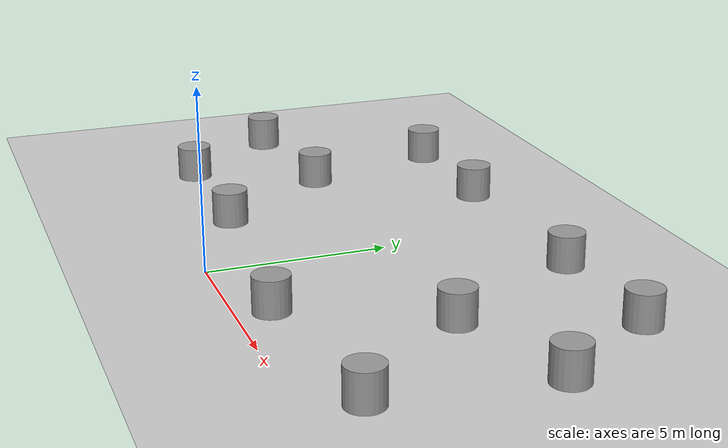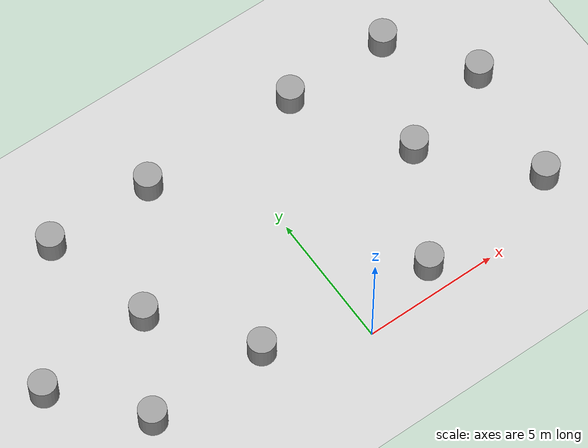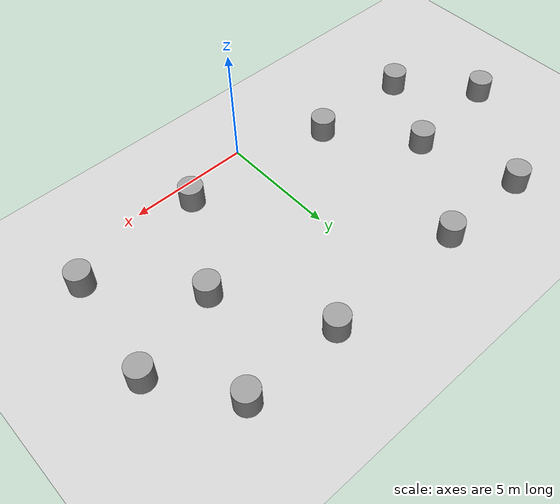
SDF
<sdf version="1.7">
 <world name="default">
  <light name="sun" type="directional">
   <pose>0 0 10 0 -0 0</pose>
   <diffuse>0.8 0.8 0.8 1</diffuse>
   <specular>0.2 0.2 0.2 1</specular>
   <attenuation>
    <range>1000</range>
    <constant>0.9</constant>
    <linear>0.01</linear>
    <quadratic>0.001</quadratic>
   </attenuation>
   <direction>-0.5 0.1 -0.9</direction>
   <spot><inner_angle>0</inner_angle><outer_angle>0</outer_angle><falloff>0</falloff></spot>
  </light>
  <model name="ground_plane">
   <static>1</static>
   <link name="link">
    <collision name="collision">
     <geometry><plane><normal>0 0 1</normal><size>100 100</size></plane></geometry>
     <surface><friction><ode><mu>100</mu><mu2>50</mu2></ode></friction></surface>
    </collision>
    <visual name="visual">
     <cast_shadows>0</cast_shadows>
     <geometry><plane><normal>0 0 1</normal><size>100 100</size></plane></geometry>
     <material>
      <script><uri>file://media/materials/scripts/gazebo.material</uri><name>Gazebo/Grey</name></script>
     </material>
    </visual>
   </link>
  </model>
  <gravity>0 0 -9.8</gravity>
  <magnetic_field>6e-06 2.3e-05 -4.2e-05</magnetic_field>
  <atmosphere type="adiabatic"/>
  <physics type="ode">
   <max_step_size>0.01</max_step_size>
   <real_time_factor>1</real_time_factor>
   <real_time_update_rate>100</real_time_update_rate>
  </physics>
  <scene><ambient>0.4 0.4 0.4 1</ambient><background>0.7 0.7 0.7 1</background><shadows>1</shadows></scene>
  <spherical_coordinates>
   <surface_model>EARTH_WGS84</surface_model>
   <latitude_deg>0</latitude_deg>
   <longitude_deg>0</longitude_deg>
   <elevation>0</elevation>
   <heading_deg>0</heading_deg>
  </spherical_coordinates>
  <model name="unit_cylinder">
   <pose>3.05222 0.920404 0.49912 0 0 -0.135827</pose>
   <link name="link">
    <inertial>
     <mass>1</mass>
     <inertia><ixx>0.145833</ixx><ixy>0</ixy><ixz>0</ixz><iyy>0.145833</iyy><iyz>0</iyz><izz>0.125</izz></inertia>
    </inertial>
    <collision name="collision">
     <geometry><cylinder><radius>0.5</radius><length>1</length></cylinder></geometry>
    </collision>
    <visual name="visual">
     <geometry><cylinder><radius>0.5</radius><length>1</length></cylinder></geometry>
     <material>
      <script><name>Gazebo/Grey</name><uri>file://media/materials/scripts/gazebo.material</uri></script>
     </material>
    </visual>
   </link>
  </model>
  <model name="unit_cylinder_0">
   <pose>5.33965 4.8715 0.499096 4.9e-05 4.8e-05 0.010187</pose>
   <link name="link">
    <inertial>
     <mass>1</mass>
     <inertia><ixx>0.145833</ixx><ixy>0</ixy><ixz>0</ixz><iyy>0.145833</iyy><iyz>0</iyz><izz>0.125</izz></inertia>
    </inertial>
    <collision name="collision">
     <geometry><cylinder><radius>0.5</radius><length>1</length></cylinder></geometry>
    </collision>
    <visual name="visual">
     <geometry><cylinder><radius>0.5</radius><length>1</length></cylinder></geometry>
     <material>
      <script><name>Gazebo/Grey</name><uri>file://media/materials/scripts/gazebo.material</uri></script>
     </material>
    </visual>
   </link>
  </model>
  <model name="unit_cylinder_2">
   <pose>8.99962 6.0004 0.499824 -0.000249 -0.000249 -6e-05</pose>
   <link name="link">
    <inertial>
     <mass>1</mass>
     <inertia><ixx>0.145833</ixx><ixy>0</ixy><ixz>0</ixz><iyy>0.145833</iyy><iyz>0</iyz><izz>0.125</izz></inertia>
    </inertial>
    <collision name="collision">
     <geometry><cylinder><radius>0.5</radius><length>1</length></cylinder></geometry>
    </collision>
    <visual name="visual">
     <geometry><cylinder><radius>0.5</radius><length>1</length></cylinder></geometry>
     <material>
      <script><name>Gazebo/Grey</name><uri>file://media/materials/scripts/gazebo.material</uri></script>
     </material>
    </visual>
   </link>
  </model>
  <model name="unit_cylinder_1">
   <pose>2.99949 9.00052 0.499824 -0.000257 -0.000242 0.030033</pose>
   <link name="link">
    <inertial>
     <mass>1</mass>
     <inertia><ixx>0.145833</ixx><ixy>0</ixy><ixz>0</ixz><iyy>0.145833</iyy><iyz>0</iyz><izz>0.125</izz></inertia>
    </inertial>
    <collision name="collision">
     <geometry><cylinder><radius>0.5</radius><length>1</length></cylinder></geometry>
    </collision>
    <visual name="visual">
     <geometry><cylinder><radius>0.5</radius><length>1</length></cylinder></geometry>
     <material>
      <script><name>Gazebo/Grey</name><uri>file://media/materials/scripts/gazebo.material</uri></script>
     </material>
    </visual>
   </link>
  </model>
  <model name="unit_cylinder_3">
   <pose>6.99969 9.00032 0.499824 -0.000249 -0.000249 -5e-05</pose>
   <link name="link">
    <inertial>
     <mass>1</mass>
     <inertia><ixx>0.145833</ixx><ixy>0</ixy><ixz>0</ixz><iyy>0.145833</iyy><iyz>0</iyz><izz>0.125</izz></inertia>
    </inertial>
    <collision name="collision">
     <geometry><cylinder><radius>0.5</radius><length>1</length></cylinder></geometry>
    </collision>
    <visual name="visual">
     <geometry><cylinder><radius>0.5</radius><length>1</length></cylinder></geometry>
     <material>
      <script><name>Gazebo/Grey</name><uri>file://media/materials/scripts/gazebo.material</uri></script>
     </material>
    </visual>
   </link>
  </model>
  <model name="unit_cylinder_4">
   <pose>8.4079 1.41372 0.499824 -0.000249 -0.000249 -4.8e-05</pose>
   <link name="link">
    <inertial>
     <mass>1</mass>
     <inertia><ixx>0.145833</ixx><ixy>0</ixy><ixz>0</ixz><iyy>0.145833</iyy><iyz>0</iyz><izz>0.125</izz></inertia>
    </inertial>
    <collision name="collision">
     <geometry><cylinder><radius>0.5</radius><length>1</length></cylinder></geometry>
    </collision>
    <visual name="visual">
     <geometry><cylinder><radius>0.5</radius><length>1</length></cylinder></geometry>
     <material>
      <script><name>Gazebo/Grey</name><uri>file://media/materials/scripts/gazebo.material</uri></script>
     </material>
    </visual>
   </link>
  </model>
  <model name="unit_cylinder_5">
   <pose>-7.81334 1.59878 0.499824 -0.000249 -0.000249 -4e-05</pose>
   <link name="link">
    <inertial>
     <mass>1</mass>
     <inertia><ixx>0.145833</ixx><ixy>0</ixy><ixz>0</ixz><iyy>0.145833</iyy><iyz>0</iyz><izz>0.125</izz></inertia>
    </inertial>
    <collision name="collision">
     <geometry><cylinder><radius>0.5</radius><length>1</length></cylinder></geometry>
    </collision>
    <visual name="visual">
     <geometry><cylinder><radius>0.5</radius><length>1</length></cylinder></geometry>
     <material>
      <script><name>Gazebo/Grey</name><uri>file://media/materials/scripts/gazebo.material</uri></script>
     </material>
    </visual>
   </link>
  </model>
  <model name="unit_cylinder_6">
   <pose>-7.00022 9.00023 0.499824 -0.000249 -0.000249 -3.9e-05</pose>
   <link name="link">
    <inertial>
     <mass>1</mass>
     <inertia><ixx>0.145833</ixx><ixy>0</ixy><ixz>0</ixz><iyy>0.145833</iyy><iyz>0</iyz><izz>0.125</izz></inertia>
    </inertial>
    <collision name="collision">
     <geometry><cylinder><radius>0.5</radius><length>1</length></cylinder></geometry>
    </collision>
    <visual name="visual">
     <geometry><cylinder><radius>0.5</radius><length>1</length></cylinder></geometry>
     <material>
      <script><name>Gazebo/Grey</name><uri>file://media/materials/scripts/gazebo.material</uri></script>
     </material>
    </visual>
   </link>
  </model>
  <model name="unit_cylinder_7">
   <pose>-10.2222 4.52165 0.49912 0 0 -3.8e-05</pose>
   <link name="link">
    <inertial>
     <mass>1</mass>
     <inertia><ixx>0.145833</ixx><ixy>0</ixy><ixz>0</ixz><iyy>0.145833</iyy><iyz>0</iyz><izz>0.125</izz></inertia>
    </inertial>
    <collision name="collision">
     <geometry><cylinder><radius>0.5</radius><length>1</length></cylinder></geometry>
    </collision>
    <visual name="visual">
     <geometry><cylinder><radius>0.5</radius><length>1</length></cylinder></geometry>
     <material>
      <script><name>Gazebo/Grey</name><uri>file://media/materials/scripts/gazebo.material</uri></script>
     </material>
    </visual>
   </link>
  </model>
  <model name="unit_cylinder_8">
   <pose>-3.00011 9.00011 0.49912 0 0 -3.7e-05</pose>
   <link name="link">
    <inertial>
     <mass>1</mass>
     <inertia><ixx>0.145833</ixx><ixy>0</ixy><ixz>0</ixz><iyy>0.145833</iyy><iyz>0</iyz><izz>0.125</izz></inertia>
    </inertial>
    <collision name="collision">
     <geometry><cylinder><radius>0.5</radius><length>1</length></cylinder></geometry>
    </collision>
    <visual name="visual">
     <geometry><cylinder><radius>0.5</radius><length>1</length></cylinder></geometry>
     <material>
      <script><name>Gazebo/Grey</name><uri>file://media/materials/scripts/gazebo.material</uri></script>
     </material>
    </visual>
   </link>
  </model>
  <model name="unit_cylinder_9">
   <pose>-5.91597 4.9454 0.499096 4.8e-05 4.8e-05 -3.6e-05</pose>
   <link name="link">
    <inertial>
     <mass>1</mass>
     <inertia><ixx>0.145833</ixx><ixy>0</ixy><ixz>0</ixz><iyy>0.145833</iyy><iyz>0</iyz><izz>0.125</izz></inertia>
    </inertial>
    <collision name="collision">
     <geometry><cylinder><radius>0.5</radius><length>1</length></cylinder></geometry>
    </collision>
    <visual name="visual">
     <geometry><cylinder><radius>0.5</radius><length>1</length></cylinder></geometry>
     <material>
      <script><name>Gazebo/Grey</name><uri>file://media/materials/scripts/gazebo.material</uri></script>
     </material>
    </visual>
   </link>
  </model>
  <model name="unit_cylinder_10">
   <pose>-3.41252 1.58468 0.499096 4.8e-05 4.8e-05 -3.3e-05</pose>
   <link name="link">
    <inertial>
     <mass>1</mass>
     <inertia><ixx>0.145833</ixx><ixy>0</ixy><ixz>0</ixz><iyy>0.145833</iyy><iyz>0</iyz><izz>0.125</izz></inertia>
    </inertial>
    <collision name="collision">
     <geometry><cylinder><radius>0.5</radius><length>1</length></cylinder></geometry>
    </collision>
    <visual name="visual">
     <geometry><cylinder><radius>0.5</radius><length>1</length></cylinder></geometry>
     <material>
      <script><name>Gazebo/Grey</name><uri>file://media/materials/scripts/gazebo.material</uri></script>
     </material>
    </visual>
   </link>
  </model>
 </world>
</sdf>
